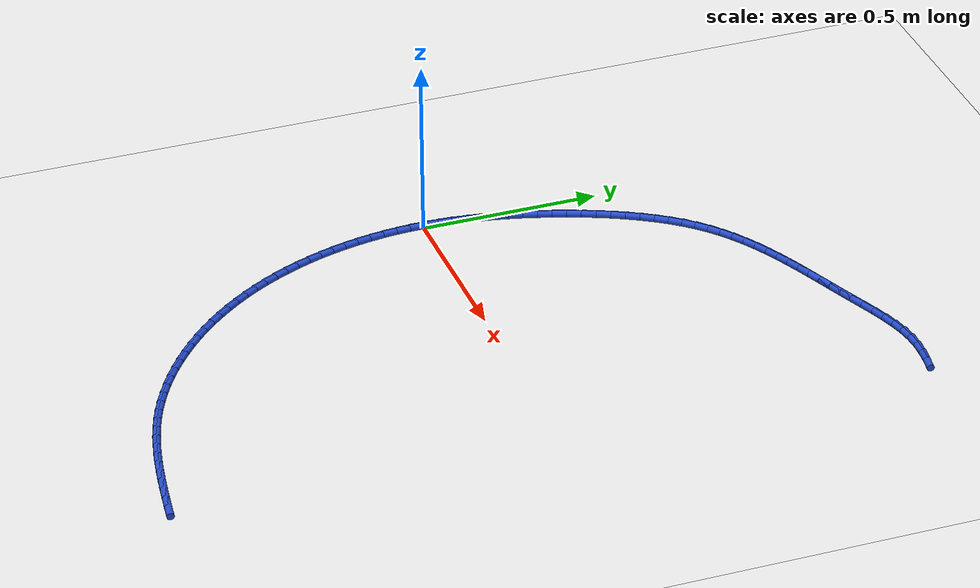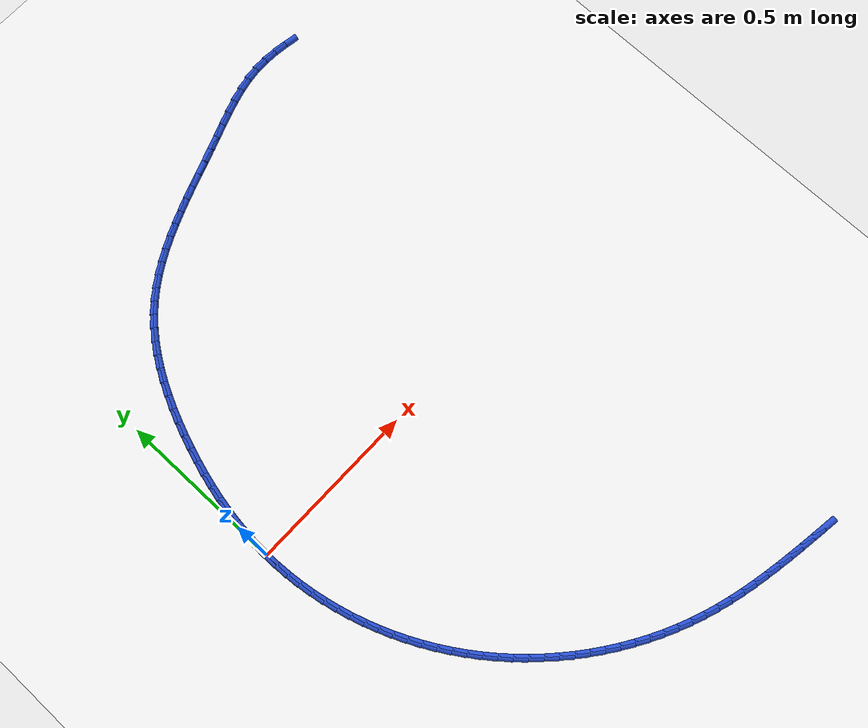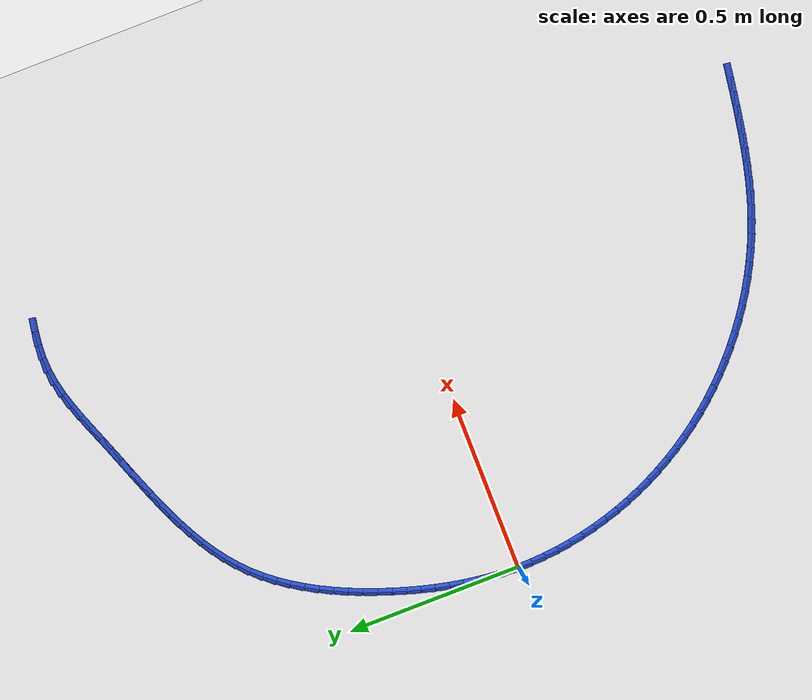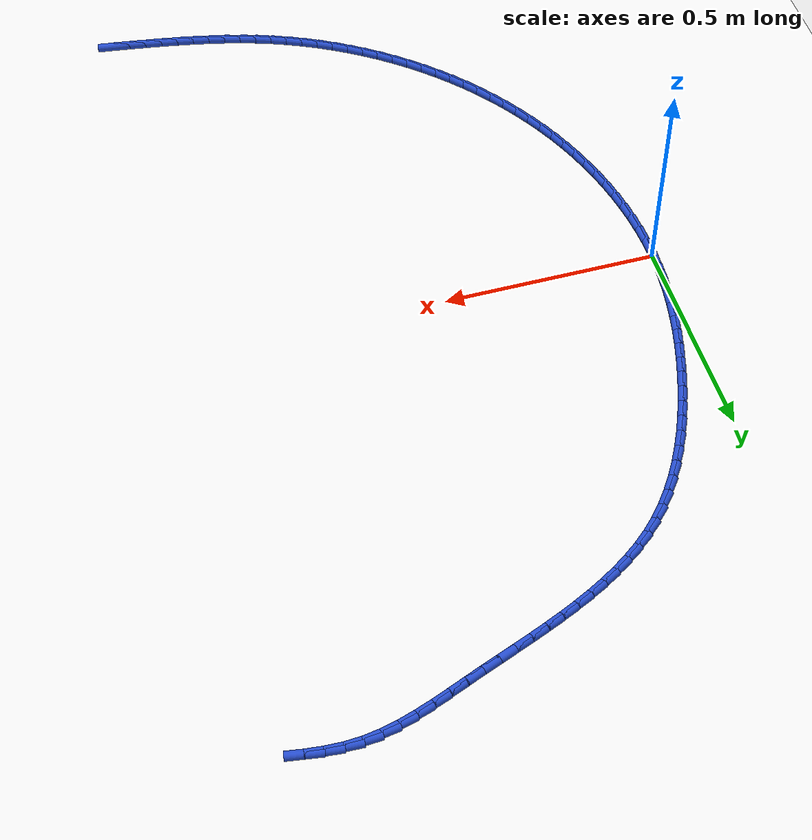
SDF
<sdf version="1.6">
 <world name="default">
  <model name="ground_plane">
   <static>1</static>
   <link name="link">
    <collision name="collision">
     <geometry><plane><normal>0 0 1</normal><size>100 100</size></plane></geometry>
     <surface><friction><ode><mu>100</mu><mu2>50</mu2></ode></friction></surface>
    </collision>
    <visual name="visual">
     <cast_shadows>0</cast_shadows>
     <geometry><plane><normal>0 0 1</normal><size>100 100</size></plane></geometry>
     <material>
      <script><uri>file://media/materials/scripts/gazebo.material</uri><name>Gazebo/WhiteGlow</name></script>
     </material>
    </visual>
   </link>
  </model>
  <model name="line">
   <link name="link_0">
    <pose>0.0 -7.632783294297951e-17 0.01 0 1.57 1.5412899925752903</pose>
    <collision name="collision">
     <geometry><cylinder><radius>0.01</radius><length>0.08</length></cylinder></geometry>
    </collision>
    <visual name="visual">
     <material>
      <script><name>Gazebo/Blue</name><uri>file://media/materials/scripts/gazebo.material</uri></script>
     </material>
     <geometry><cylinder><radius>0.01</radius><length>0.08</length></cylinder></geometry>
    </visual>
   </link>
   <link name="link_1">
    <pose>0.0011664788379523727 0.03952169348541512 0.01 0 1.57 1.4992707240843812</pose>
    <collision name="collision">
     <geometry><cylinder><radius>0.01</radius><length>0.08</length></cylinder></geometry>
    </collision>
    <visual name="visual">
     <material>
      <script><name>Gazebo/Blue</name><uri>file://media/materials/scripts/gazebo.material</uri></script>
     </material>
     <geometry><cylinder><radius>0.01</radius><length>0.08</length></cylinder></geometry>
    </visual>
   </link>
   <link name="link_2">
    <pose>0.003988897844546765 0.0789146405587893 0.01 0 1.57 1.4590372391142037</pose>
    <collision name="collision">
     <geometry><cylinder><radius>0.01</radius><length>0.08</length></cylinder></geometry>
    </collision>
    <visual name="visual">
     <material>
      <script><name>Gazebo/Blue</name><uri>file://media/materials/scripts/gazebo.material</uri></script>
     </material>
     <geometry><cylinder><radius>0.01</radius><length>0.08</length></cylinder></geometry>
    </visual>
   </link>
   <link name="link_3">
    <pose>0.008395489492251475 0.11817972581189345 0.01 0 1.57 1.4207001486004143</pose>
    <collision name="collision">
     <geometry><cylinder><radius>0.01</radius><length>0.08</length></cylinder></geometry>
    </collision>
    <visual name="visual">
     <material>
      <script><name>Gazebo/Blue</name><uri>file://media/materials/scripts/gazebo.material</uri></script>
     </material>
     <geometry><cylinder><radius>0.01</radius><length>0.08</length></cylinder></geometry>
    </visual>
   </link>
   <link name="link_4">
    <pose>0.014314486253534816 0.15731783383649867 0.01 0 1.57 1.3843372284848252</pose>
    <collision name="collision">
     <geometry><cylinder><radius>0.01</radius><length>0.08</length></cylinder></geometry>
    </collision>
    <visual name="visual">
     <material>
      <script><name>Gazebo/Blue</name><uri>file://media/materials/scripts/gazebo.material</uri></script>
     </material>
     <geometry><cylinder><radius>0.01</radius><length>0.08</length></cylinder></geometry>
    </visual>
   </link>
   <link name="link_5">
    <pose>0.021674120600865095 0.19632984922437588 0.01 0 1.57 1.349996618190478</pose>
    <collision name="collision">
     <geometry><cylinder><radius>0.01</radius><length>0.08</length></cylinder></geometry>
    </collision>
    <visual name="visual">
     <material>
      <script><name>Gazebo/Blue</name><uri>file://media/materials/scripts/gazebo.material</uri></script>
     </material>
     <geometry><cylinder><radius>0.01</radius><length>0.08</length></cylinder></geometry>
    </visual>
   </link>
   <link name="link_6">
    <pose>0.03040262500671062 0.23521665656729615 0.01 0 1.57 1.3177006863759924</pose>
    <collision name="collision">
     <geometry><cylinder><radius>0.01</radius><length>0.08</length></cylinder></geometry>
    </collision>
    <visual name="visual">
     <material>
      <script><name>Gazebo/Blue</name><uri>file://media/materials/scripts/gazebo.material</uri></script>
     </material>
     <geometry><cylinder><radius>0.01</radius><length>0.08</length></cylinder></geometry>
    </visual>
   </link>
   <link name="link_7">
    <pose>0.04042823194353967 0.2739791404570303 0.01 0 1.57 1.2874501963512435</pose>
    <collision name="collision">
     <geometry><cylinder><radius>0.01</radius><length>0.08</length></cylinder></geometry>
    </collision>
    <visual name="visual">
     <material>
      <script><name>Gazebo/Blue</name><uri>file://media/materials/scripts/gazebo.material</uri></script>
     </material>
     <geometry><cylinder><radius>0.01</radius><length>0.08</length></cylinder></geometry>
    </visual>
   </link>
   <link name="link_8">
    <pose>0.0516791738838206 0.31261818548534964 0.01 0 1.57 1.259228476046142</pose>
    <collision name="collision">
     <geometry><cylinder><radius>0.01</radius><length>0.08</length></cylinder></geometry>
    </collision>
    <visual name="visual">
     <material>
      <script><name>Gazebo/Blue</name><uri>file://media/materials/scripts/gazebo.material</uri></script>
     </material>
     <geometry><cylinder><radius>0.01</radius><length>0.08</length></cylinder></geometry>
    </visual>
   </link>
   <link name="link_9">
    <pose>0.06408368330002168 0.35113467624402495 0.01 0 1.57 1.2326728110079732</pose>
    <collision name="collision">
     <geometry><cylinder><radius>0.01</radius><length>0.08</length></cylinder></geometry>
    </collision>
    <visual name="visual">
     <material>
      <script><name>Gazebo/Blue</name><uri>file://media/materials/scripts/gazebo.material</uri></script>
     </material>
     <geometry><cylinder><radius>0.01</radius><length>0.08</length></cylinder></geometry>
    </visual>
   </link>
   <link name="link_10">
    <pose>0.07757961715217083 0.38951606993776433 0.01 0 1.57 1.2046663298399918</pose>
    <collision name="collision">
     <geometry><cylinder><radius>0.01</radius><length>0.08</length></cylinder></geometry>
    </collision>
    <visual name="visual">
     <material>
      <script><name>Gazebo/Blue</name><uri>file://media/materials/scripts/gazebo.material</uri></script>
     </material>
     <geometry><cylinder><radius>0.01</radius><length>0.08</length></cylinder></geometry>
    </visual>
   </link>
   <link name="link_11">
    <pose>0.09219231562351649 0.4276277735226336 0.01 0 1.57 1.1733557439373374</pose>
    <collision name="collision">
     <geometry><cylinder><radius>0.01</radius><length>0.08</length></cylinder></geometry>
    </collision>
    <visual name="visual">
     <material>
      <script><name>Gazebo/Blue</name><uri>file://media/materials/scripts/gazebo.material</uri></script>
     </material>
     <geometry><cylinder><radius>0.01</radius><length>0.08</length></cylinder></geometry>
    </visual>
   </link>
   <link name="link_12">
    <pose>0.1079937880150481 0.46527008458613106 0.01 0 1.57 1.13842394764249</pose>
    <collision name="collision">
     <geometry><cylinder><radius>0.01</radius><length>0.08</length></cylinder></geometry>
    </collision>
    <visual name="visual">
     <material>
      <script><name>Gazebo/Blue</name><uri>file://media/materials/scripts/gazebo.material</uri></script>
     </material>
     <geometry><cylinder><radius>0.01</radius><length>0.08</length></cylinder></geometry>
    </visual>
   </link>
   <link name="link_13">
    <pose>0.1250564805326321 0.502242691177755 0.01 0 1.57 1.0995316928623047</pose>
    <collision name="collision">
     <geometry><cylinder><radius>0.01</radius><length>0.08</length></cylinder></geometry>
    </collision>
    <visual name="visual">
     <material>
      <script><name>Gazebo/Blue</name><uri>file://media/materials/scripts/gazebo.material</uri></script>
     </material>
     <geometry><cylinder><radius>0.01</radius><length>0.08</length></cylinder></geometry>
    </visual>
   </link>
   <link name="link_14">
    <pose>0.14345283938213488 0.5383452813470035 0.01 0 1.57 1.056309799792036</pose>
    <collision name="collision">
     <geometry><cylinder><radius>0.01</radius><length>0.08</length></cylinder></geometry>
    </collision>
    <visual name="visual">
     <material>
      <script><name>Gazebo/Blue</name><uri>file://media/materials/scripts/gazebo.material</uri></script>
     </material>
     <geometry><cylinder><radius>0.01</radius><length>0.08</length></cylinder></geometry>
    </visual>
   </link>
   <link name="link_15">
    <pose>0.16325531076942298 0.5733775431433752 0.01 0 1.57 1.0083719547693577</pose>
    <collision name="collision">
     <geometry><cylinder><radius>0.01</radius><length>0.08</length></cylinder></geometry>
    </collision>
    <visual name="visual">
     <material>
      <script><name>Gazebo/Blue</name><uri>file://media/materials/scripts/gazebo.material</uri></script>
     </material>
     <geometry><cylinder><radius>0.01</radius><length>0.08</length></cylinder></geometry>
    </visual>
   </link>
   <link name="link_16">
    <pose>0.18453634090036294 0.6071391646163686 0.01 0 1.57 0.9553355315662889</pose>
    <collision name="collision">
     <geometry><cylinder><radius>0.01</radius><length>0.08</length></cylinder></geometry>
    </collision>
    <visual name="visual">
     <material>
      <script><name>Gazebo/Blue</name><uri>file://media/materials/scripts/gazebo.material</uri></script>
     </material>
     <geometry><cylinder><radius>0.01</radius><length>0.08</length></cylinder></geometry>
    </visual>
   </link>
   <link name="link_17">
    <pose>0.20736837598082117 0.6394298338154821 0.01 0 1.57 0.8968532065829017</pose>
    <collision name="collision">
     <geometry><cylinder><radius>0.01</radius><length>0.08</length></cylinder></geometry>
    </collision>
    <visual name="visual">
     <material>
      <script><name>Gazebo/Blue</name><uri>file://media/materials/scripts/gazebo.material</uri></script>
     </material>
     <geometry><cylinder><radius>0.01</radius><length>0.08</length></cylinder></geometry>
    </visual>
   </link>
   <link name="link_18">
    <pose>0.231823862216664 0.6700492387902137 0.01 0 1.57 0.832657710094816</pose>
    <collision name="collision">
     <geometry><cylinder><radius>0.01</radius><length>0.08</length></cylinder></geometry>
    </collision>
    <visual name="visual">
     <material>
      <script><name>Gazebo/Blue</name><uri>file://media/materials/scripts/gazebo.material</uri></script>
     </material>
     <geometry><cylinder><radius>0.01</radius><length>0.08</length></cylinder></geometry>
    </visual>
   </link>
   <link name="link_19">
    <pose>0.25797524581375797 0.6987970675900622 0.01 0 1.57 0.7628251900576954</pose>
    <collision name="collision">
     <geometry><cylinder><radius>0.01</radius><length>0.08</length></cylinder></geometry>
    </collision>
    <visual name="visual">
     <material>
      <script><name>Gazebo/Blue</name><uri>file://media/materials/scripts/gazebo.material</uri></script>
     </material>
     <geometry><cylinder><radius>0.01</radius><length>0.08</length></cylinder></geometry>
    </visual>
   </link>
   <link name="link_20">
    <pose>0.2858909137905333 0.7254800718240572 0.01 0 1.57 0.6928456704834146</pose>
    <collision name="collision">
     <geometry><cylinder><radius>0.01</radius><length>0.08</length></cylinder></geometry>
    </collision>
    <visual name="visual">
     <material>
      <script><name>Gazebo/Blue</name><uri>file://media/materials/scripts/gazebo.material</uri></script>
     </material>
     <geometry><cylinder><radius>0.01</radius><length>0.08</length></cylinder></geometry>
    </visual>
   </link>
   <link name="link_21">
    <pose>0.31553416655634947 0.7500878686453204 0.01 0 1.57 0.6290100344715495</pose>
    <collision name="collision">
     <geometry><cylinder><radius>0.01</radius><length>0.08</length></cylinder></geometry>
    </collision>
    <visual name="visual">
     <material>
      <script><name>Gazebo/Blue</name><uri>file://media/materials/scripts/gazebo.material</uri></script>
     </material>
     <geometry><cylinder><radius>0.01</radius><length>0.08</length></cylinder></geometry>
    </visual>
   </link>
   <link name="link_22">
    <pose>0.3467562590621506 0.7728050501319181 0.01 0 1.57 0.5720623573704425</pose>
    <collision name="collision">
     <geometry><cylinder><radius>0.01</radius><length>0.08</length></cylinder></geometry>
    </collision>
    <visual name="visual">
     <material>
      <script><name>Gazebo/Blue</name><uri>file://media/materials/scripts/gazebo.material</uri></script>
     </material>
     <geometry><cylinder><radius>0.01</radius><length>0.08</length></cylinder></geometry>
    </visual>
   </link>
   <link name="link_23">
    <pose>0.379402993507576 0.79382569691943 0.01 0 1.57 0.5221846340085324</pose>
    <collision name="collision">
     <geometry><cylinder><radius>0.01</radius><length>0.08</length></cylinder></geometry>
    </collision>
    <visual name="visual">
     <material>
      <script><name>Gazebo/Blue</name><uri>file://media/materials/scripts/gazebo.material</uri></script>
     </material>
     <geometry><cylinder><radius>0.01</radius><length>0.08</length></cylinder></geometry>
    </visual>
   </link>
   <link name="link_24">
    <pose>0.4133201720922656 0.813343889643436 0.01 0 1.57 0.4793493766203029</pose>
    <collision name="collision">
     <geometry><cylinder><radius>0.01</radius><length>0.08</length></cylinder></geometry>
    </collision>
    <visual name="visual">
     <material>
      <script><name>Gazebo/Blue</name><uri>file://media/materials/scripts/gazebo.material</uri></script>
     </material>
     <geometry><cylinder><radius>0.01</radius><length>0.08</length></cylinder></geometry>
    </visual>
   </link>
   <link name="link_25">
    <pose>0.44835359701585875 0.831553708939516 0.01 0 1.57 0.443395670748436</pose>
    <collision name="collision">
     <geometry><cylinder><radius>0.01</radius><length>0.08</length></cylinder></geometry>
    </collision>
    <visual name="visual">
     <material>
      <script><name>Gazebo/Blue</name><uri>file://media/materials/scripts/gazebo.material</uri></script>
     </material>
     <geometry><cylinder><radius>0.01</radius><length>0.08</length></cylinder></geometry>
    </visual>
   </link>
   <link name="link_26">
    <pose>0.4843490704779951 0.8486492354432495 0.01 0 1.57 0.4140936662736246</pose>
    <collision name="collision">
     <geometry><cylinder><radius>0.01</radius><length>0.08</length></cylinder></geometry>
    </collision>
    <visual name="visual">
     <material>
      <script><name>Gazebo/Blue</name><uri>file://media/materials/scripts/gazebo.material</uri></script>
     </material>
     <geometry><cylinder><radius>0.01</radius><length>0.08</length></cylinder></geometry>
    </visual>
   </link>
   <link name="link_27">
    <pose>0.5211523946783141 0.8648245497902166 0.01 0 1.57 0.39119404927412676</pose>
    <collision name="collision">
     <geometry><cylinder><radius>0.01</radius><length>0.08</length></cylinder></geometry>
    </collision>
    <visual name="visual">
     <material>
      <script><name>Gazebo/Blue</name><uri>file://media/materials/scripts/gazebo.material</uri></script>
     </material>
     <geometry><cylinder><radius>0.01</radius><length>0.08</length></cylinder></geometry>
    </visual>
   </link>
   <link name="link_28">
    <pose>0.5586093718164556 0.8802737326159972 0.01 0 1.57 0.3744631647613453</pose>
    <collision name="collision">
     <geometry><cylinder><radius>0.01</radius><length>0.08</length></cylinder></geometry>
    </collision>
    <visual name="visual">
     <material>
      <script><name>Gazebo/Blue</name><uri>file://media/materials/scripts/gazebo.material</uri></script>
     </material>
     <geometry><cylinder><radius>0.01</radius><length>0.08</length></cylinder></geometry>
    </visual>
   </link>
   <link name="link_29">
    <pose>0.5965658040920592 0.8951908645561709 0.01 0 1.57 0.36370628559066215</pose>
    <collision name="collision">
     <geometry><cylinder><radius>0.01</radius><length>0.08</length></cylinder></geometry>
    </collision>
    <visual name="visual">
     <material>
      <script><name>Gazebo/Blue</name><uri>file://media/materials/scripts/gazebo.material</uri></script>
     </material>
     <geometry><cylinder><radius>0.01</radius><length>0.08</length></cylinder></geometry>
    </visual>
   </link>
   <link name="link_30">
    <pose>0.634867493704764 0.9097700262463174 0.01 0 1.57 0.35878185655316497</pose>
    <collision name="collision">
     <geometry><cylinder><radius>0.01</radius><length>0.08</length></cylinder></geometry>
    </collision>
    <visual name="visual">
     <material>
      <script><name>Gazebo/Blue</name><uri>file://media/materials/scripts/gazebo.material</uri></script>
     </material>
     <geometry><cylinder><radius>0.01</radius><length>0.08</length></cylinder></geometry>
    </visual>
   </link>
   <link name="link_31">
    <pose>0.6733602428542103 0.9242052983220168 0.01 0 1.57 0.359609105543254</pose>
    <collision name="collision">
     <geometry><cylinder><radius>0.01</radius><length>0.08</length></cylinder></geometry>
    </collision>
    <visual name="visual">
     <material>
      <script><name>Gazebo/Blue</name><uri>file://media/materials/scripts/gazebo.material</uri></script>
     </material>
     <geometry><cylinder><radius>0.01</radius><length>0.08</length></cylinder></geometry>
    </visual>
   </link>
   <link name="link_32">
    <pose>0.7118898537400373 0.9386907614188489 0.01 0 1.57 0.36610900160165105</pose>
    <collision name="collision">
     <geometry><cylinder><radius>0.01</radius><length>0.08</length></cylinder></geometry>
    </collision>
    <visual name="visual">
     <material>
      <script><name>Gazebo/Blue</name><uri>file://media/materials/scripts/gazebo.material</uri></script>
     </material>
     <geometry><cylinder><radius>0.01</radius><length>0.08</length></cylinder></geometry>
    </visual>
   </link>
   <link name="link_33">
    <pose>0.7503027326218837 0.9534180107579484 0.01 0 1.57 0.37126597722281707</pose>
    <collision name="collision">
     <geometry><cylinder><radius>0.01</radius><length>0.08</length></cylinder></geometry>
    </collision>
    <visual name="visual">
     <material>
      <script><name>Gazebo/Blue</name><uri>file://media/materials/scripts/gazebo.material</uri></script>
     </material>
     <geometry><cylinder><radius>0.01</radius><length>0.08</length></cylinder></geometry>
    </visual>
   </link>
   <link name="link_34">
    <pose>0.7885143291995406 0.9682945612311419 0.01 0 1.57 0.36150294382758663</pose>
    <collision name="collision">
     <geometry><cylinder><radius>0.01</radius><length>0.08</length></cylinder></geometry>
    </collision>
    <visual name="visual">
     <material>
      <script><name>Gazebo/Blue</name><uri>file://media/materials/scripts/gazebo.material</uri></script>
     </material>
     <geometry><cylinder><radius>0.01</radius><length>0.08</length></cylinder></geometry>
    </visual>
   </link>
   <link name="link_35">
    <pose>0.8265720620033965 0.9826849398841684 0.01 0 1.57 0.3347821961690057</pose>
    <collision name="collision">
     <geometry><cylinder><radius>0.01</radius><length>0.08</length></cylinder></geometry>
    </collision>
    <visual name="visual">
     <material>
      <script><name>Gazebo/Blue</name><uri>file://media/materials/scripts/gazebo.material</uri></script>
     </material>
     <geometry><cylinder><radius>0.01</radius><length>0.08</length></cylinder></geometry>
    </visual>
   </link>
   <link name="link_36">
    <pose>0.8645382196826192 0.9958924904232626 0.01 0 1.57 0.29017471325000943</pose>
    <collision name="collision">
     <geometry><cylinder><radius>0.01</radius><length>0.08</length></cylinder></geometry>
    </collision>
    <visual name="visual">
     <material>
      <script><name>Gazebo/Blue</name><uri>file://media/materials/scripts/gazebo.material</uri></script>
     </material>
     <geometry><cylinder><radius>0.01</radius><length>0.08</length></cylinder></geometry>
    </visual>
   </link>
   <link name="link_37">
    <pose>0.902475090886375 1.0072205565546581 0.01 0 1.57 0.2265399543691088</pose>
    <collision name="collision">
     <geometry><cylinder><radius>0.01</radius><length>0.08</length></cylinder></geometry>
    </collision>
    <visual name="visual">
     <material>
      <script><name>Gazebo/Blue</name><uri>file://media/materials/scripts/gazebo.material</uri></script>
     </material>
     <geometry><cylinder><radius>0.01</radius><length>0.08</length></cylinder></geometry>
    </visual>
   </link>
   <link name="link_38">
    <pose>0.9404449642638316 1.01597248198459 0.01 0 1.57 0.14295883201085677</pose>
    <collision name="collision">
     <geometry><cylinder><radius>0.01</radius><length>0.08</length></cylinder></geometry>
    </collision>
    <visual name="visual">
     <material>
      <script><name>Gazebo/Blue</name><uri>file://media/materials/scripts/gazebo.material</uri></script>
     </material>
     <geometry><cylinder><radius>0.01</radius><length>0.08</length></cylinder></geometry>
    </visual>
   </link>
   <link name="link_39">
    <pose>0.9785101284641564 1.0214516104192926 0.01 0 1.57 0.04289458394852147</pose>
    <collision name="collision">
     <geometry><cylinder><radius>0.01</radius><length>0.08</length></cylinder></geometry>
    </collision>
    <visual name="visual">
     <material>
      <script><name>Gazebo/Blue</name><uri>file://media/materials/scripts/gazebo.material</uri></script>
     </material>
     <geometry><cylinder><radius>0.01</radius><length>0.08</length></cylinder></geometry>
    </visual>
   </link>
   <link name="link_40">
    <pose>1.0167306579591828 1.023092070372587 0.01 0 1.57 -0.0473076465144964</pose>
    <collision name="collision">
     <geometry><cylinder><radius>0.01</radius><length>0.08</length></cylinder></geometry>
    </collision>
    <visual name="visual">
     <material>
      <script><name>Gazebo/Blue</name><uri>file://media/materials/scripts/gazebo.material</uri></script>
     </material>
     <geometry><cylinder><radius>0.01</radius><length>0.08</length></cylinder></geometry>
    </visual>
   </link>
   <link name="link_41">
    <pose>1.055150625651718 1.02127315500039 0.01 0 1.57 -0.11547012662469658</pose>
    <collision name="collision">
     <geometry><cylinder><radius>0.01</radius><length>0.08</length></cylinder></geometry>
    </collision>
    <visual name="visual">
     <material>
      <script><name>Gazebo/Blue</name><uri>file://media/materials/scripts/gazebo.material</uri></script>
     </material>
     <geometry><cylinder><radius>0.01</radius><length>0.08</length></cylinder></geometry>
    </visual>
   </link>
   <link name="link_42">
    <pose>1.0938070719578519 1.0167895453357794 0.01 0 1.57 -0.16173549665649767</pose>
    <collision name="collision">
     <geometry><cylinder><radius>0.01</radius><length>0.08</length></cylinder></geometry>
    </collision>
    <visual name="visual">
     <material>
      <script><name>Gazebo/Blue</name><uri>file://media/materials/scripts/gazebo.material</uri></script>
     </material>
     <geometry><cylinder><radius>0.01</radius><length>0.08</length></cylinder></geometry>
    </visual>
   </link>
   <link name="link_129">
    <pose>1.0580607775981696 -1.0387006517830684 0.01 0 1.57 -0.14388864322990466</pose>
    <collision name="collision">
     <geometry><cylinder><radius>0.01</radius><length>0.08</length></cylinder></geometry>
    </collision>
    <visual name="visual">
     <material>
      <script><name>Gazebo/Blue</name><uri>file://media/materials/scripts/gazebo.material</uri></script>
     </material>
     <geometry><cylinder><radius>0.01</radius><length>0.08</length></cylinder></geometry>
    </visual>
   </link>
   <link name="link_130">
    <pose>1.017918603248674 -1.0328844538597433 0.01 0 1.57 -0.1545730776262132</pose>
    <collision name="collision">
     <geometry><cylinder><radius>0.01</radius><length>0.08</length></cylinder></geometry>
    </collision>
    <visual name="visual">
     <material>
      <script><name>Gazebo/Blue</name><uri>file://media/materials/scripts/gazebo.material</uri></script>
     </material>
     <geometry><cylinder><radius>0.01</radius><length>0.08</length></cylinder></geometry>
    </visual>
   </link>
   <link name="link_131">
    <pose>0.9779647864330522 -1.0266590090982517 0.01 0 1.57 -0.16413361869144244</pose>
    <collision name="collision">
     <geometry><cylinder><radius>0.01</radius><length>0.08</length></cylinder></geometry>
    </collision>
    <visual name="visual">
     <material>
      <script><name>Gazebo/Blue</name><uri>file://media/materials/scripts/gazebo.material</uri></script>
     </material>
     <geometry><cylinder><radius>0.01</radius><length>0.08</length></cylinder></geometry>
    </visual>
   </link>
   <link name="link_132">
    <pose>0.9382555200407917 -1.0200822179225522 0.01 0 1.57 -0.17702279523539882</pose>
    <collision name="collision">
     <geometry><cylinder><radius>0.01</radius><length>0.08</length></cylinder></geometry>
    </collision>
    <visual name="visual">
     <material>
      <script><name>Gazebo/Blue</name><uri>file://media/materials/scripts/gazebo.material</uri></script>
     </material>
     <geometry><cylinder><radius>0.01</radius><length>0.08</length></cylinder></geometry>
    </visual>
   </link>
   <link name="link_133">
    <pose>0.8988192107292495 -1.013027243722914 0.01 0 1.57 -0.1937716641719993</pose>
    <collision name="collision">
     <geometry><cylinder><radius>0.01</radius><length>0.08</length></cylinder></geometry>
    </collision>
    <visual name="visual">
     <material>
      <script><name>Gazebo/Blue</name><uri>file://media/materials/scripts/gazebo.material</uri></script>
     </material>
     <geometry><cylinder><radius>0.01</radius><length>0.08</length></cylinder></geometry>
    </visual>
   </link>
   <link name="link_134">
    <pose>0.8596812262805635 -1.0053470458982476 0.01 0 1.57 -0.21441915559980604</pose>
    <collision name="collision">
     <geometry><cylinder><radius>0.01</radius><length>0.08</length></cylinder></geometry>
    </collision>
    <visual name="visual">
     <material>
      <script><name>Gazebo/Blue</name><uri>file://media/materials/scripts/gazebo.material</uri></script>
     </material>
     <geometry><cylinder><radius>0.01</radius><length>0.08</length></cylinder></geometry>
    </visual>
   </link>
   <link name="link_135">
    <pose>0.8208669344768716 -0.9968945838474648 0.01 0 1.57 -0.238986284136327</pose>
    <collision name="collision">
     <geometry><cylinder><radius>0.01</radius><length>0.08</length></cylinder></geometry>
    </collision>
    <visual name="visual">
     <material>
      <script><name>Gazebo/Blue</name><uri>file://media/materials/scripts/gazebo.material</uri></script>
     </material>
     <geometry><cylinder><radius>0.01</radius><length>0.08</length></cylinder></geometry>
    </visual>
   </link>
   <link name="link_136">
    <pose>0.7824017031003112 -0.9875228169694764 0.01 0 1.57 -0.2674663720549572</pose>
    <collision name="collision">
     <geometry><cylinder><radius>0.01</radius><length>0.08</length></cylinder></geometry>
    </collision>
    <visual name="visual">
     <material>
      <script><name>Gazebo/Blue</name><uri>file://media/materials/scripts/gazebo.material</uri></script>
     </material>
     <geometry><cylinder><radius>0.01</radius><length>0.08</length></cylinder></geometry>
    </visual>
   </link>
   <link name="link_137">
    <pose>0.7443108999330218 -0.9770847046631944 0.01 0 1.57 -0.2998136233517218</pose>
    <collision name="collision">
     <geometry><cylinder><radius>0.01</radius><length>0.08</length></cylinder></geometry>
    </collision>
    <visual name="visual">
     <material>
      <script><name>Gazebo/Blue</name><uri>file://media/materials/scripts/gazebo.material</uri></script>
     </material>
     <geometry><cylinder><radius>0.01</radius><length>0.08</length></cylinder></geometry>
    </visual>
   </link>
   <link name="link_138">
    <pose>0.706619892757141 -0.9654332063275305 0.01 0 1.57 -0.3359306728974225</pose>
    <collision name="collision">
     <geometry><cylinder><radius>0.01</radius><length>0.08</length></cylinder></geometry>
    </collision>
    <visual name="visual">
     <material>
      <script><name>Gazebo/Blue</name><uri>file://media/materials/scripts/gazebo.material</uri></script>
     </material>
     <geometry><cylinder><radius>0.01</radius><length>0.08</length></cylinder></geometry>
    </visual>
   </link>
   <link name="link_139">
    <pose>0.6693540493548065 -0.9524212813613955 0.01 0 1.57 -0.37548720627562376</pose>
    <collision name="collision">
     <geometry><cylinder><radius>0.01</radius><length>0.08</length></cylinder></geometry>
    </collision>
    <visual name="visual">
     <material>
      <script><name>Gazebo/Blue</name><uri>file://media/materials/scripts/gazebo.material</uri></script>
     </material>
     <geometry><cylinder><radius>0.01</radius><length>0.08</length></cylinder></geometry>
    </visual>
   </link>
   <link name="link_140">
    <pose>0.6325401479424398 -0.9379096324311417 0.01 0 1.57 -0.41599464515026463</pose>
    <collision name="collision">
     <geometry><cylinder><radius>0.01</radius><length>0.08</length></cylinder></geometry>
    </collision>
    <visual name="visual">
     <material>
      <script><name>Gazebo/Blue</name><uri>file://media/materials/scripts/gazebo.material</uri></script>
     </material>
     <geometry><cylinder><radius>0.01</radius><length>0.08</length></cylinder></geometry>
    </visual>
   </link>
   <link name="link_141">
    <pose>0.5962245031739748 -0.9218662170127104 0.01 0 1.57 -0.4557965170231271</pose>
    <collision name="collision">
     <geometry><cylinder><radius>0.01</radius><length>0.08</length></cylinder></geometry>
    </collision>
    <visual name="visual">
     <material>
      <script><name>Gazebo/Blue</name><uri>file://media/materials/scripts/gazebo.material</uri></script>
     </material>
     <geometry><cylinder><radius>0.01</radius><length>0.08</length></cylinder></geometry>
    </visual>
   </link>
   <link name="link_142">
    <pose>0.5604677053083221 -0.9043373654835859 0.01 0 1.57 -0.4949607221677593</pose>
    <collision name="collision">
     <geometry><cylinder><radius>0.01</radius><length>0.08</length></cylinder></geometry>
    </collision>
    <visual name="visual">
     <material>
      <script><name>Gazebo/Blue</name><uri>file://media/materials/scripts/gazebo.material</uri></script>
     </material>
     <geometry><cylinder><radius>0.01</radius><length>0.08</length></cylinder></geometry>
    </visual>
   </link>
   <link name="link_143">
    <pose>0.5253306703008664 -0.8853711962910089 0.01 0 1.57 -0.5335962037170796</pose>
    <collision name="collision">
     <geometry><cylinder><radius>0.01</radius><length>0.08</length></cylinder></geometry>
    </collision>
    <visual name="visual">
     <material>
      <script><name>Gazebo/Blue</name><uri>file://media/materials/scripts/gazebo.material</uri></script>
     </material>
     <geometry><cylinder><radius>0.01</radius><length>0.08</length></cylinder></geometry>
    </visual>
   </link>
   <link name="link_144">
    <pose>0.4908743141069904 -0.8650158278822206 0.01 0 1.57 -0.5718131994124633</pose>
    <collision name="collision">
     <geometry><cylinder><radius>0.01</radius><length>0.08</length></cylinder></geometry>
    </collision>
    <visual name="visual">
     <material>
      <script><name>Gazebo/Blue</name><uri>file://media/materials/scripts/gazebo.material</uri></script>
     </material>
     <geometry><cylinder><radius>0.01</radius><length>0.08</length></cylinder></geometry>
    </visual>
   </link>
   <link name="link_145">
    <pose>0.45715955268207703 -0.8433193787044613 0.01 0 1.57 -0.6097227170432832</pose>
    <collision name="collision">
     <geometry><cylinder><radius>0.01</radius><length>0.08</length></cylinder></geometry>
    </collision>
    <visual name="visual">
     <material>
      <script><name>Gazebo/Blue</name><uri>file://media/materials/scripts/gazebo.material</uri></script>
     </material>
     <geometry><cylinder><radius>0.01</radius><length>0.08</length></cylinder></geometry>
    </visual>
   </link>
   <link name="link_146">
    <pose>0.42424730198150973 -0.8203299672049724 0.01 0 1.57 -0.6474361659274899</pose>
    <collision name="collision">
     <geometry><cylinder><radius>0.01</radius><length>0.08</length></cylinder></geometry>
    </collision>
    <visual name="visual">
     <material>
      <script><name>Gazebo/Blue</name><uri>file://media/materials/scripts/gazebo.material</uri></script>
     </material>
     <geometry><cylinder><radius>0.01</radius><length>0.08</length></cylinder></geometry>
    </visual>
   </link>
   <link name="link_147">
    <pose>0.39219847796067103 -0.7960957118309934 0.01 0 1.57 -0.6850650997909308</pose>
    <collision name="collision">
     <geometry><cylinder><radius>0.01</radius><length>0.08</length></cylinder></geometry>
    </collision>
    <visual name="visual">
     <material>
      <script><name>Gazebo/Blue</name><uri>file://media/materials/scripts/gazebo.material</uri></script>
     </material>
     <geometry><cylinder><radius>0.01</radius><length>0.08</length></cylinder></geometry>
    </visual>
   </link>
   <link name="link_148">
    <pose>0.3610739965749455 -0.7706647310297664 0.01 0 1.57 -0.7227210284984822</pose>
    <collision name="collision">
     <geometry><cylinder><radius>0.01</radius><length>0.08</length></cylinder></geometry>
    </collision>
    <visual name="visual">
     <material>
      <script><name>Gazebo/Blue</name><uri>file://media/materials/scripts/gazebo.material</uri></script>
     </material>
     <geometry><cylinder><radius>0.01</radius><length>0.08</length></cylinder></geometry>
    </visual>
   </link>
   <link name="link_149">
    <pose>0.33093477377971575 -0.7440851432485319 0.01 0 1.57 -0.7605152576901899</pose>
    <collision name="collision">
     <geometry><cylinder><radius>0.01</radius><length>0.08</length></cylinder></geometry>
    </collision>
    <visual name="visual">
     <material>
      <script><name>Gazebo/Blue</name><uri>file://media/materials/scripts/gazebo.material</uri></script>
     </material>
     <geometry><cylinder><radius>0.01</radius><length>0.08</length></cylinder></geometry>
    </visual>
   </link>
   <link name="link_150">
    <pose>0.3018417255303651 -0.7164050669345307 0.01 0 1.57 -0.7985587162170058</pose>
    <collision name="collision">
     <geometry><cylinder><radius>0.01</radius><length>0.08</length></cylinder></geometry>
    </collision>
    <visual name="visual">
     <material>
      <script><name>Gazebo/Blue</name><uri>file://media/materials/scripts/gazebo.material</uri></script>
     </material>
     <geometry><cylinder><radius>0.01</radius><length>0.08</length></cylinder></geometry>
    </visual>
   </link>
   <link name="link_151">
    <pose>0.2738557677822765 -0.6876726205350031 0.01 0 1.57 -0.8369521884499348</pose>
    <collision name="collision">
     <geometry><cylinder><radius>0.01</radius><length>0.08</length></cylinder></geometry>
    </collision>
    <visual name="visual">
     <material>
      <script><name>Gazebo/Blue</name><uri>file://media/materials/scripts/gazebo.material</uri></script>
     </material>
     <geometry><cylinder><radius>0.01</radius><length>0.08</length></cylinder></geometry>
    </visual>
   </link>
   <link name="link_152">
    <pose>0.2470370559321768 -0.6579356497472217 0.01 0 1.57 -0.8755936989332221</pose>
    <collision name="collision">
     <geometry><cylinder><radius>0.01</radius><length>0.08</length></cylinder></geometry>
    </collision>
    <visual name="visual">
     <material>
      <script><name>Gazebo/Blue</name><uri>file://media/materials/scripts/gazebo.material</uri></script>
     </material>
     <geometry><cylinder><radius>0.01</radius><length>0.08</length></cylinder></geometry>
    </visual>
   </link>
   <link name="link_153">
    <pose>0.22143020703881883 -0.6272364279419049 0.01 0 1.57 -0.9143377867801549</pose>
    <collision name="collision">
     <geometry><cylinder><radius>0.01</radius><length>0.08</length></cylinder></geometry>
    </collision>
    <visual name="visual">
     <material>
      <script><name>Gazebo/Blue</name><uri>file://media/materials/scripts/gazebo.material</uri></script>
     </material>
     <geometry><cylinder><radius>0.01</radius><length>0.08</length></cylinder></geometry>
    </visual>
   </link>
   <link name="link_154">
    <pose>0.19706531383645803 -0.5956120198066308 0.01 0 1.57 -0.9531989743471765</pose>
    <collision name="collision">
     <geometry><cylinder><radius>0.01</radius><length>0.08</length></cylinder></geometry>
    </collision>
    <visual name="visual">
     <material>
      <script><name>Gazebo/Blue</name><uri>file://media/materials/scripts/gazebo.material</uri></script>
     </material>
     <geometry><cylinder><radius>0.01</radius><length>0.08</length></cylinder></geometry>
    </visual>
   </link>
   <link name="link_155">
    <pose>0.17397191159296915 -0.5630992901115383 0.01 0 1.57 -0.9921981662230044</pose>
    <collision name="collision">
     <geometry><cylinder><radius>0.01</radius><length>0.08</length></cylinder></geometry>
    </collision>
    <visual name="visual">
     <material>
      <script><name>Gazebo/Blue</name><uri>file://media/materials/scripts/gazebo.material</uri></script>
     </material>
     <geometry><cylinder><radius>0.01</radius><length>0.08</length></cylinder></geometry>
    </visual>
   </link>
   <link name="link_156">
    <pose>0.1521795355762275 -0.5297351036267666 0.01 0 1.57 -1.0313552296558475</pose>
    <collision name="collision">
     <geometry><cylinder><radius>0.01</radius><length>0.08</length></cylinder></geometry>
    </collision>
    <visual name="visual">
     <material>
      <script><name>Gazebo/Blue</name><uri>file://media/materials/scripts/gazebo.material</uri></script>
     </material>
     <geometry><cylinder><radius>0.01</radius><length>0.08</length></cylinder></geometry>
    </visual>
   </link>
   <link name="link_157">
    <pose>0.1317177210541083 -0.4955563251224557 0.01 0 1.57 -1.070688562225742</pose>
    <collision name="collision">
     <geometry><cylinder><radius>0.01</radius><length>0.08</length></cylinder></geometry>
    </collision>
    <visual name="visual">
     <material>
      <script><name>Gazebo/Blue</name><uri>file://media/materials/scripts/gazebo.material</uri></script>
     </material>
     <geometry><cylinder><radius>0.01</radius><length>0.08</length></cylinder></geometry>
    </visual>
   </link>
   <link name="link_158">
    <pose>0.11261600329448639 -0.4605998193687439 0.01 0 1.57 -1.1102146549662344</pose>
    <collision name="collision">
     <geometry><cylinder><radius>0.01</radius><length>0.08</length></cylinder></geometry>
    </collision>
    <visual name="visual">
     <material>
      <script><name>Gazebo/Blue</name><uri>file://media/materials/scripts/gazebo.material</uri></script>
     </material>
     <geometry><cylinder><radius>0.01</radius><length>0.08</length></cylinder></geometry>
    </visual>
   </link>
   <link name="link_159">
    <pose>0.09490391756523779 -0.4249024511357724 0.01 0 1.57 -1.1499476544973661</pose>
    <collision name="collision">
     <geometry><cylinder><radius>0.01</radius><length>0.08</length></cylinder></geometry>
    </collision>
    <visual name="visual">
     <material>
      <script><name>Gazebo/Blue</name><uri>file://media/materials/scripts/gazebo.material</uri></script>
     </material>
     <geometry><cylinder><radius>0.01</radius><length>0.08</length></cylinder></geometry>
    </visual>
   </link>
   <link name="link_160">
    <pose>0.07861099913423734 -0.38850108519367976 0.01 0 1.57 -1.1898975009980688</pose>
    <collision name="collision">
     <geometry><cylinder><radius>0.01</radius><length>0.08</length></cylinder></geometry>
    </collision>
    <visual name="visual">
     <material>
      <script><name>Gazebo/Blue</name><uri>file://media/materials/scripts/gazebo.material</uri></script>
     </material>
     <geometry><cylinder><radius>0.01</radius><length>0.08</length></cylinder></geometry>
    </visual>
   </link>
   <link name="link_161">
    <pose>0.06376677792267746 -0.3514327263337071 0.01 0 1.57 -1.2299342909273483</pose>
    <collision name="collision">
     <geometry><cylinder><radius>0.01</radius><length>0.08</length></cylinder></geometry>
    </collision>
    <visual name="visual">
     <material>
      <script><name>Gazebo/Blue</name><uri>file://media/materials/scripts/gazebo.material</uri></script>
     </material>
     <geometry><cylinder><radius>0.01</radius><length>0.08</length></cylinder></geometry>
    </visual>
   </link>
   <link name="link_162">
    <pose>0.05040021273207311 -0.31374933606104094 0.01 0 1.57 -1.2698729658972945</pose>
    <collision name="collision">
     <geometry><cylinder><radius>0.01</radius><length>0.08</length></cylinder></geometry>
    </collision>
    <visual name="visual">
     <material>
      <script><name>Gazebo/Blue</name><uri>file://media/materials/scripts/gazebo.material</uri></script>
     </material>
     <geometry><cylinder><radius>0.01</radius><length>0.08</length></cylinder></geometry>
    </visual>
   </link>
   <link name="link_163">
    <pose>0.038539191776093586 -0.27553091286995296 0.01 0 1.57 -1.3098171817605246</pose>
    <collision name="collision">
     <geometry><cylinder><radius>0.01</radius><length>0.08</length></cylinder></geometry>
    </collision>
    <visual name="visual">
     <material>
      <script><name>Gazebo/Blue</name><uri>file://media/materials/scripts/gazebo.material</uri></script>
     </material>
     <geometry><cylinder><radius>0.01</radius><length>0.08</length></cylinder></geometry>
    </visual>
   </link>
   <link name="link_164">
    <pose>0.028211485487432877 -0.23686053975072383 0.01 0 1.57 -1.3499014674118073</pose>
    <collision name="collision">
     <geometry><cylinder><radius>0.01</radius><length>0.08</length></cylinder></geometry>
    </collision>
    <visual name="visual">
     <material>
      <script><name>Gazebo/Blue</name><uri>file://media/materials/scripts/gazebo.material</uri></script>
     </material>
     <geometry><cylinder><radius>0.01</radius><length>0.08</length></cylinder></geometry>
    </visual>
   </link>
   <link name="link_165">
    <pose>0.01944486429878435 -0.19782129969363196 0.01 0 1.57 -1.3902595575529526</pose>
    <collision name="collision">
     <geometry><cylinder><radius>0.01</radius><length>0.08</length></cylinder></geometry>
    </collision>
    <visual name="visual">
     <material>
      <script><name>Gazebo/Blue</name><uri>file://media/materials/scripts/gazebo.material</uri></script>
     </material>
     <geometry><cylinder><radius>0.01</radius><length>0.08</length></cylinder></geometry>
    </visual>
   </link>
   <link name="link_166">
    <pose>0.012267098642841605 -0.15849627568895647 0.01 0 1.57 -1.431024108845366</pose>
    <collision name="collision">
     <geometry><cylinder><radius>0.01</radius><length>0.08</length></cylinder></geometry>
    </collision>
    <visual name="visual">
     <material>
      <script><name>Gazebo/Blue</name><uri>file://media/materials/scripts/gazebo.material</uri></script>
     </material>
     <geometry><cylinder><radius>0.01</radius><length>0.08</length></cylinder></geometry>
    </visual>
   </link>
   <link name="link_167">
    <pose>0.00670595895229821 -0.11896855072697651 0.01 0 1.57 -1.4723262795831396</pose>
    <collision name="collision">
     <geometry><cylinder><radius>0.01</radius><length>0.08</length></cylinder></geometry>
    </collision>
    <visual name="visual">
     <material>
      <script><name>Gazebo/Blue</name><uri>file://media/materials/scripts/gazebo.material</uri></script>
     </material>
     <geometry><cylinder><radius>0.01</radius><length>0.08</length></cylinder></geometry>
    </visual>
   </link>
   <link name="link_168">
    <pose>0.002789215659847687 -0.07932120779797033 0.01 0 1.57 -1.5142951088665273</pose>
    <collision name="collision">
     <geometry><cylinder><radius>0.01</radius><length>0.08</length></cylinder></geometry>
    </collision>
    <visual name="visual">
     <material>
      <script><name>Gazebo/Blue</name><uri>file://media/materials/scripts/gazebo.material</uri></script>
     </material>
     <geometry><cylinder><radius>0.01</radius><length>0.08</length></cylinder></geometry>
    </visual>
   </link>
   <link name="link_169">
    <pose>0.0005446391981837866 -0.03963732989221876 0.01 0 1.57 -1.5570566292160477</pose>
    <collision name="collision">
     <geometry><cylinder><radius>0.01</radius><length>0.08</length></cylinder></geometry>
    </collision>
    <visual name="visual">
     <material>
      <script><name>Gazebo/Blue</name><uri>file://media/materials/scripts/gazebo.material</uri></script>
     </material>
     <geometry><cylinder><radius>0.01</radius><length>0.08</length></cylinder></geometry>
    </visual>
   </link>
   <link name="link_170">
    <pose>1.734723475976807e-18 -4.163336342344337e-17 0.01 0 1.57 1.540860008183831</pose>
    <collision name="collision">
     <geometry><cylinder><radius>0.01</radius><length>0.08</length></cylinder></geometry>
    </collision>
    <visual name="visual">
     <material>
      <script><name>Gazebo/Blue</name><uri>file://media/materials/scripts/gazebo.material</uri></script>
     </material>
     <geometry><cylinder><radius>0.01</radius><length>0.08</length></cylinder></geometry>
    </visual>
   </link>
   <link name="link_171">
    <pose>0.0011830684979899173 0.03950769888840667 0.01 0 1.57 1.540860008183831</pose>
    <collision name="collision">
     <geometry><cylinder><radius>0.01</radius><length>0.08</length></cylinder></geometry>
    </collision>
    <visual name="visual">
     <material>
      <script><name>Gazebo/Blue</name><uri>file://media/materials/scripts/gazebo.material</uri></script>
     </material>
     <geometry><cylinder><radius>0.01</radius><length>0.08</length></cylinder></geometry>
    </visual>
   </link>
  </model>
 </world>
</sdf>
